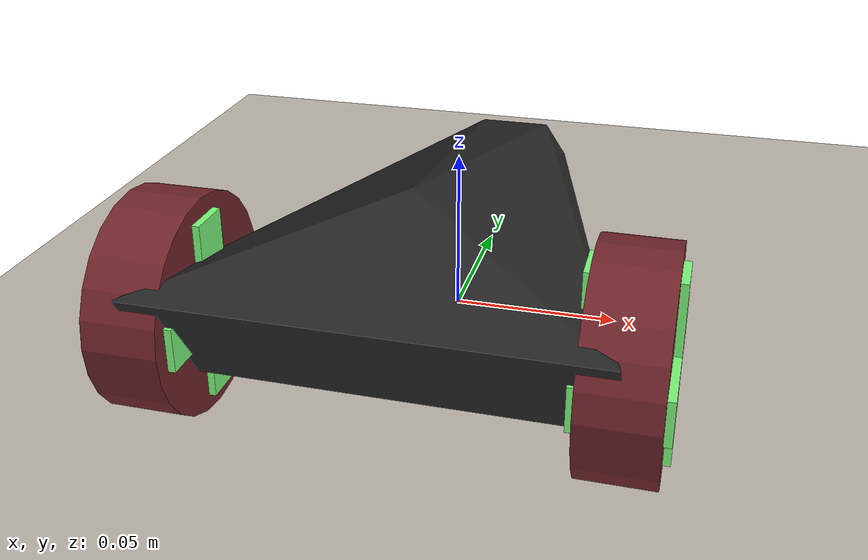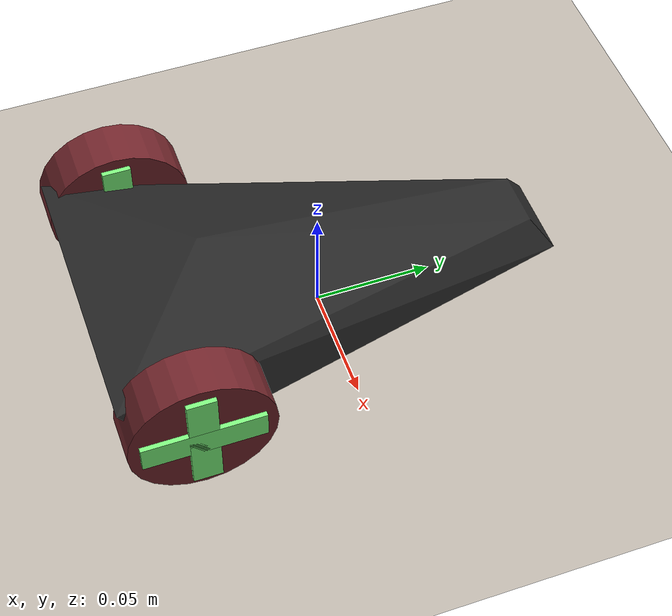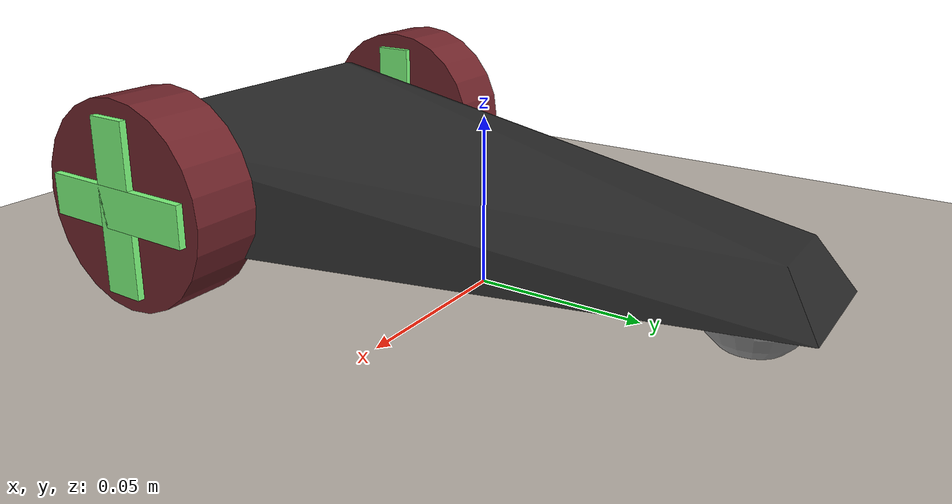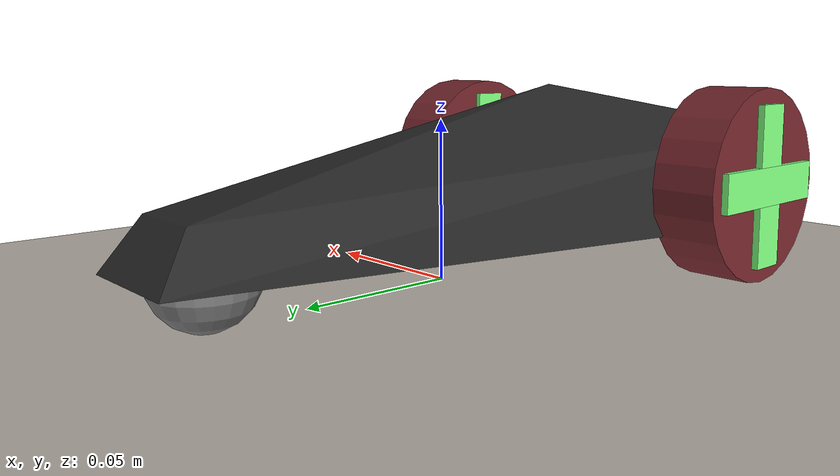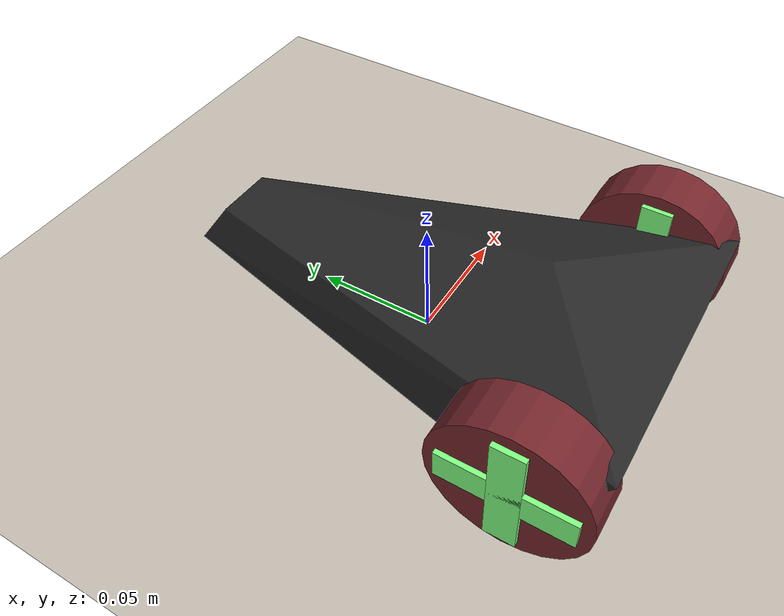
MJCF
<mujoco>
  <include file="common/materials.xml"/>
  <compiler autolimits="true"/>
  <statistic center="0 0 0" extent="0.5"/>

  <asset>
    <texture name="grid" type="2d" builtin="checker" width="512" height="512" mark="edge" rgb1="0.4314 0.5294 0.6431" rgb2="0.8157 0.8549 0.9059"
      markrgb="0.8 0.8 0.8"/>

    <texture name="wheel" type="2d" builtin="checker" width="128" height="128"  rgb1="0.75 0.15 0.15" rgb2="0.15 0.15 0.20"/>

    <material name="grid" texture="grid" texrepeat="1 1" texuniform="true" reflectance=".2"/>
    <material name="wheel" texture="wheel"/>

    <mesh name="chasis" scale=".01 .006 .0015"
      vertex=" 9   2   0
              -10  10  10
               9  -2   0
               10  3  -10
               10 -3  -10
              -8   10 -10
              -10 -10  10
              -8  -10 -10
              -5   0   20"/>
  </asset>

  <default>
    <joint damping=".03" actuatorfrcrange="-0.5 0.5"/>
    <default class="wheel">
      <geom type="cylinder" size=".03 .01" material = "wheel"/>
    </default>
    <default class="decor">
      <site type="box" rgba=".5 1 .5 1"/>
    </default>
  </default>

  <worldbody>
    <geom type="plane" size="0 0 .01" material="motphys-ground"/>
    <camera name="camera" pos="0 -1 1.5"  fovy="45" />
    <body name="car" pos="0 0 .03" euler="0 0 90">
      <freejoint/>
      <light name="top light" pos="0 0 2" mode="trackcom" diffuse=".4 .4 .4"/>
      <geom name="chasis" type="mesh" mesh="chasis" rgba = "0.15 0.15 0.15 1.0"/>
      <geom name="front wheel" pos=".08 0 -.015" type="sphere" size=".015" condim="1" priority="1"/>
      <light name="front light" pos=".1 0 .02" dir="2 0 -1" diffuse="1 1 1"/>
      <body name="left wheel" pos="-.07 .06 0" zaxis="0 1 0">
        <joint name="left"/>
        <geom class="wheel"/>
        <site class="decor" size=".006 .025 .012"/>
        <site class="decor" size=".025 .006 .012"/>
      </body>
      <body name="right wheel" pos="-.07 -.06 0" zaxis="0 1 0">
        <joint name="right"/>
        <geom class="wheel"/>
        <site class="decor" size=".006 .025 .012"/>
        <site class="decor" size=".025 .006 .012"/>
      </body>
    </body>
  </worldbody>

  <tendon>
    <fixed name="forward">
      <joint joint="left" coef=".5"/>
      <joint joint="right" coef=".5"/>
    </fixed>
    <fixed name="turn">
      <joint joint="left" coef="-.5"/>
      <joint joint="right" coef=".5"/>
    </fixed>
  </tendon>

  <actuator>
    <motor name="forward" tendon="forward" ctrlrange="-1 1"/>
    <motor name="turn" tendon="turn" ctrlrange="-1 1"/>
  </actuator>

  <sensor>
    <jointactuatorfrc name="right" joint="right"/>
    <jointactuatorfrc name="left" joint="left"/>
  </sensor>
</mujoco>

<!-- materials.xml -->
<!--
Common textures, colors and materials to be used throughout this suite. Some
materials such as xxx_highlight are activated on occurence of certain events,
for example receiving a positive reward.
-->
<mujoco>
  <asset>
    <texture name="motphys-ground" type="2d" file="motphys-ground.png" />
    <material name="motphys-ground" texture="motphys-ground" texuniform="true"
      texrepeat="0.4 0.4" />
  </asset>
</mujoco>
